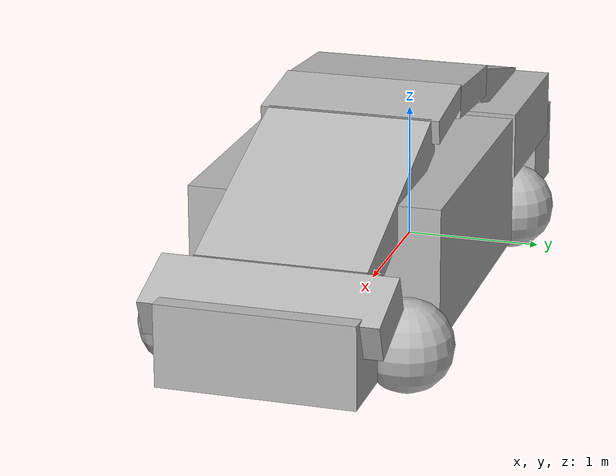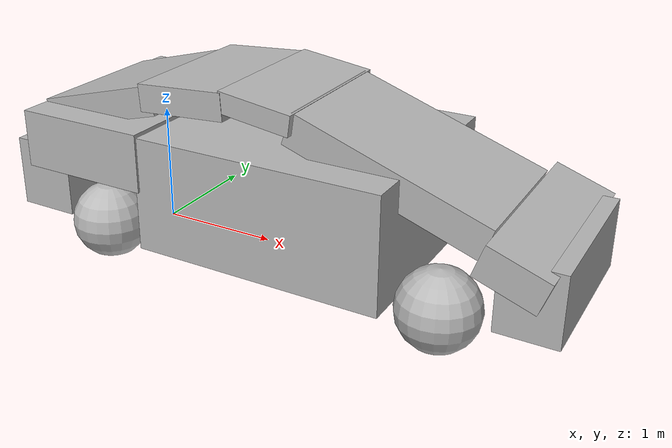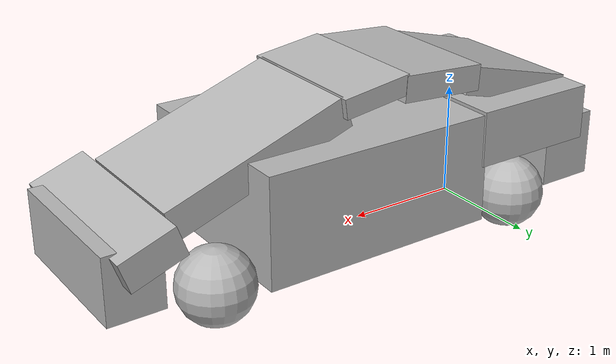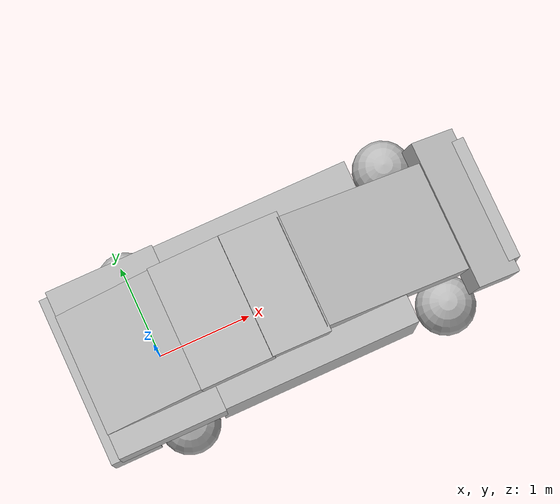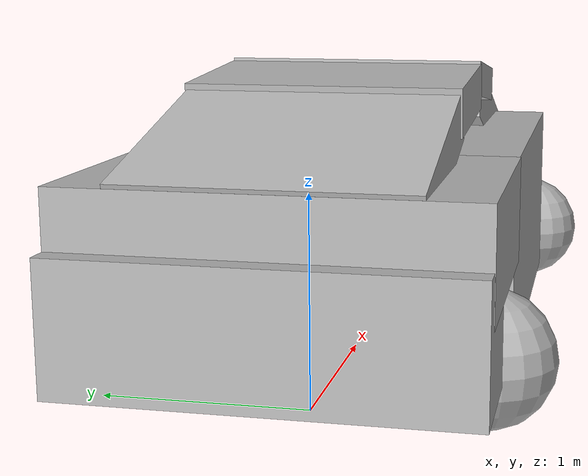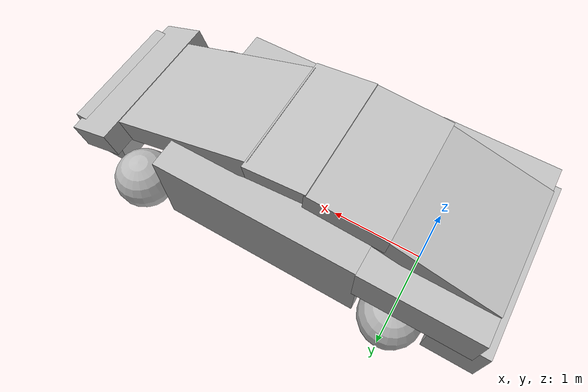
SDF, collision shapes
<?xml version='1.0'?>
<sdf version='1.6'>
  <model name='prius'>
    <static>false</static>

    <link name='base_link'>
      <pose>0 0 0 0 -0 0</pose>
      <inertial>
        <pose>1.44893 0 0.479646 0 -0 0</pose>
        <mass>1357</mass>
        <inertia>
          <ixx>2581.36</ixx>
          <ixy>-1.57724</ixy>
          <ixz>-0.695487</ixz>
          <iyy>593.642</iyy>
          <iyz>0</iyz>
          <izz>2684.05</izz>
        </inertia>
      </inertial>

      <visual name='base_link_fixed_joint_lump__chassis_visual'>
        <pose>1.45 0 0 0 -0 1.57</pose>
        <geometry>
          <mesh>
            <scale>0.01 0.01 0.01</scale>
            <uri>model://prius/meshes/hybrid_body.obj</uri>
          </mesh>
        </geometry>
        <transparency>0</transparency>
        <cast_shadows>1</cast_shadows>
      </visual>

      <collision name='base_link_fixed_joint_lump__top_front_collision_4'>
        <laser_retro>0</laser_retro>
        <pose>1.28876 0.000128 1.38604 0.13503 -0 1.57</pose>
        <geometry>
          <box>
            <size>1.27915 0.625988 0.171868</size>
          </box>
        </geometry>
      </collision>

      <collision name='base_link_fixed_joint_lump__trunk_collision_7'>
        <laser_retro>0</laser_retro>
        <pose>-0.187058 0.001304 0.88818 0 -0 1.57</pose>
        <geometry>
          <box>
            <size>1.78806 1.13899 0.482746</size>
          </box>
        </geometry>
      </collision>

      <collision name='base_link_fixed_joint_lump__chassis_collision'>
        <laser_retro>0</laser_retro>
        <pose>1.4 4e-05 0.625 0 -0 1.57</pose>
        <geometry>
          <box>
            <size>1.7526 2.1 0.95</size>
          </box>
        </geometry>
      </collision>

      <collision name='base_link_fixed_joint_lump__back_bumper_collision_8'>
        <laser_retro>0</laser_retro>
        <pose>-0.604453 0.001636 0.57787 0 -0 1.57</pose>
        <geometry>
          <box>
            <size>1.78165 0.512093 0.581427</size>
          </box>
        </geometry>
      </collision>

      <collision name='base_link_fixed_joint_lump__windshield_collision_3'>
        <laser_retro>0</laser_retro>
        <pose>2.3251 -0.000697 1.03227 0.335476 0 1.57</pose>
        <geometry>
          <box>
            <size>1.16838 1.65425 0.272347</size>
          </box>
        </geometry>
      </collision>

      <collision name='base_link_fixed_joint_lump__top_rear_collision_5'>
        <laser_retro>0</laser_retro>

        <pose>0.632304 0.000651 1.36007 -0.068997 -0 1.57</pose>
        <geometry>
          <box>
            <size>1.28513 0.771189 0.226557</size>
          </box>
        </geometry>
      </collision>

      <collision name='base_link_fixed_joint_lump__front_bumper_collision_1'>
        <laser_retro>0</laser_retro>
        <pose>3.45 -0.001593 0.458488 0 -0 1.57</pose>
        <geometry>
          <box>
            <size>1.33728 0.48 0.566691</size>
          </box>
        </geometry>
      </collision>

      <collision name='base_link_fixed_joint_lump__rear_window_collision_6'>
        <laser_retro>0</laser_retro>
        <pose>-0.19053 0.001306 1.17513 -0.262017 -0 1.57</pose>
        <geometry>
          <box>
            <size>1.26785 1.11634 0.244286</size>
          </box>
        </geometry>
      </collision>

      <collision name='base_link_fixed_joint_lump__hood_collision_2'>
        <laser_retro>0</laser_retro>
        <pose>3.35084 -0.001514 0.676305 0.341247 0 1.57</pose>
        <geometry>
          <box>
            <size>1.59797 0.493107 0.265468</size>
          </box>
        </geometry>
      </collision>
    </link>

    <link name='fl_axle'>
      <pose>2.86061 0.765877 0.3 0 -0 1.57</pose>
      <inertial>
        <pose>0 0 0 0 -0 0</pose>
        <mass>1</mass>
        <inertia>
          <ixx>0.004</ixx>
          <ixy>0</ixy>
          <ixz>0</ixz>
          <iyy>0.004</iyy>
          <iyz>0</iyz>
          <izz>0.004</izz>
        </inertia>
      </inertial>
      <self_collide>0</self_collide>
      <enable_wind>0</enable_wind>
      <kinematic>0</kinematic>
    </link>

    <link name='fr_axle'>
      <pose>2.85939 -0.768123 0.3 0 -0 1.57</pose>
      <inertial>
        <pose>0 0 0 0 -0 0</pose>
        <mass>1</mass>
        <inertia>
          <ixx>0.004</ixx>
          <ixy>0</ixy>
          <ixz>0</ixz>
          <iyy>0.004</iyy>
          <iyz>0</iyz>
          <izz>0.004</izz>
        </inertia>
      </inertial>
      <self_collide>0</self_collide>
      <enable_wind>0</enable_wind>
      <kinematic>0</kinematic>
    </link>

    <link name='front_left_wheel'>
      <pose>2.86061 0.765877 0.3 0 -0 1.57</pose>
      <inertial>
        <pose>0 0 0 0 -0 0</pose>
        <mass>11</mass>
        <inertia>
          <ixx>0.586312</ixx>
          <ixy>0</ixy>
          <ixz>0</ixz>
          <iyy>0.335529</iyy>
          <iyz>0</iyz>
          <izz>0.335529</izz>
        </inertia>
      </inertial>
      <visual name='front_left_wheel_visual'>
        <pose>0 0 0 0 -0 0</pose>
        <geometry>
          <mesh>
            <scale>0.01 0.01 0.01</scale>
            <uri>model://prius/meshes/wheel.obj</uri>
          </mesh>
        </geometry>
      </visual>
      <collision name='front_left_wheel_collision_collision'>
        <laser_retro>0</laser_retro>
        <pose>0 0 0 0 -0 0</pose>
        <geometry>
          <sphere>
            <radius>0.31265</radius>
          </sphere>
        </geometry>
      </collision>
    </link>

    <link name='front_right_wheel'>
      <pose>2.85939 -0.768123 0.3 0 -0 1.57</pose>
      <inertial>
        <pose>0 0 0 0 -0 0</pose>
        <mass>11</mass>
        <inertia>
          <ixx>0.586312</ixx>
          <ixy>0</ixy>
          <ixz>0</ixz>
          <iyy>0.335529</iyy>
          <iyz>0</iyz>
          <izz>0.335529</izz>
        </inertia>
      </inertial>
      <visual name='front_right_wheel_visual'>
        <pose>0 0 0 0 -0 0</pose>
        <geometry>
          <mesh>
            <scale>0.01 0.01 0.01</scale>
            <uri>model://prius/meshes/wheel.obj</uri>
          </mesh>
        </geometry>
      </visual>
      <collision name='front_right_wheel_collision_collision'>
        <laser_retro>0</laser_retro>
        <pose>0 0 0 0 -0 0</pose>
        <geometry>
          <sphere>
            <radius>0.31265</radius>
          </sphere>
        </geometry>
      </collision>
    </link>

    <link name='rear_left_wheel'>
      <pose>0.000632 0.794154 0.3 0 -0 1.57</pose>
      <inertial>
        <pose>0 0 0 0 -0 0</pose>
        <mass>11</mass>
        <inertia>
          <ixx>0.586312</ixx>
          <ixy>0</ixy>
          <ixz>0</ixz>
          <iyy>0.335529</iyy>
          <iyz>0</iyz>
          <izz>0.335529</izz>
        </inertia>
      </inertial>
      <visual name='rear_left_wheel_visual'>
        <pose>0 0 0 0 -0 0</pose>
        <geometry>
          <mesh>
            <scale>0.01 0.01 0.01</scale>
            <uri>model://prius/meshes/wheel.obj</uri>
          </mesh>
        </geometry>
      </visual>
      <collision name='rear_left_wheel_collision_collision'>
        <laser_retro>0</laser_retro>
        <pose>0 0 0 0 -0 0</pose>
        <geometry>
          <sphere>
            <radius>0.31265</radius>
          </sphere>
        </geometry>
      </collision>
    </link>

    <link name='rear_right_wheel'>
      <pose>-0.000631 -0.791845 0.3 0 -0 1.57</pose>
      <inertial>
        <pose>0 0 0 0 -0 0</pose>
        <mass>11</mass>
        <inertia>
          <ixx>0.586312</ixx>
          <ixy>0</ixy>
          <ixz>0</ixz>
          <iyy>0.335529</iyy>
          <iyz>0</iyz>
          <izz>0.335529</izz>
        </inertia>
      </inertial>
      <visual name='rear_right_wheel_visual'>
        <pose>0 0 0 0 -0 0</pose>
        <geometry>
          <mesh>
            <scale>0.01 0.01 0.01</scale>
            <uri>model://prius/meshes/wheel.obj</uri>
          </mesh>
        </geometry>
      </visual>
      <collision name='rear_right_wheel_collision_collision'>
        <laser_retro>0</laser_retro>
        <pose>0 0 0 0 -0 0</pose>
        <geometry>
          <sphere>
            <radius>0.31265</radius>
          </sphere>
        </geometry>
      </collision>
    </link>

    <joint name='front_left_wheel_joint' type='fixed'>
      <parent>fl_axle</parent>
      <child>front_left_wheel</child>
      <pose>0 0 0 0 -0 0</pose>
      <axis>
        <xyz>0.000796 1 0</xyz>
        <use_parent_model_frame>1</use_parent_model_frame>
      </axis>
    </joint>

    <joint name='front_right_wheel_joint' type='fixed'>
      <parent>fr_axle</parent>
      <child>front_right_wheel</child>
      <pose>0 0 0 0 -0 0</pose>
      <axis>
        <xyz>0.000796 1 0</xyz>
        <use_parent_model_frame>1</use_parent_model_frame>
      </axis>

    </joint>
    <joint name='rear_left_wheel_joint' type='fixed'>
      <parent>base_link</parent>
      <child>rear_left_wheel</child>
      <pose>0 0 0 0 -0 0</pose>
      <axis>
        <xyz>0.000796 1 0</xyz>
        <use_parent_model_frame>1</use_parent_model_frame>
      </axis>
    </joint>

    <joint name='rear_right_wheel_joint' type='fixed'>
      <parent>base_link</parent>
      <child>rear_right_wheel</child>
      <pose>0 0 0 0 -0 0</pose>
      <axis>
        <xyz>0.000796 1 0</xyz>
        <use_parent_model_frame>1</use_parent_model_frame>
      </axis>
    </joint>

  </model>
</sdf>
